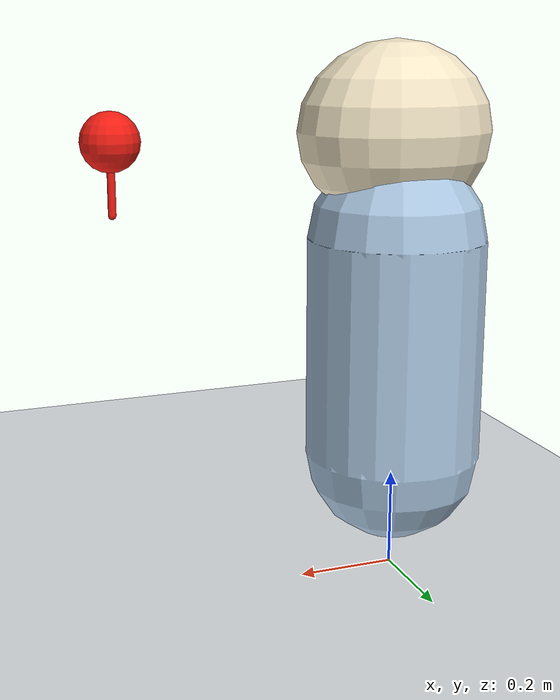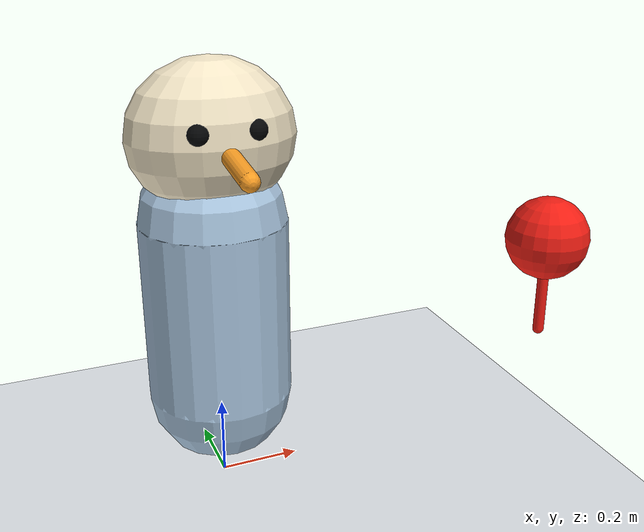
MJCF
<mujoco model="soulforge_m0_head">
  <compiler angle="radian" autolimits="true"/>
  <option timestep="0.005" gravity="0 0 -9.81"/>
  <visual>
    <global offwidth="1280" offheight="960"/>
    <headlight diffuse="0.7 0.7 0.7" ambient="0.25 0.25 0.25" specular="0.2 0.2 0.2"/>
    <rgba haze="0.92 0.95 1 1"/>
  </visual>
  <asset>
    <material name="mat_body" rgba="0.67 0.78 0.88 1"/>
    <material name="mat_head" rgba="0.95 0.90 0.78 1"/>
    <material name="mat_eye" rgba="0.02 0.025 0.03 1"/>
    <material name="mat_target" rgba="0.95 0.12 0.08 1"/>
    <material name="mat_floor" rgba="0.88 0.90 0.92 1"/>
  </asset>
  <worldbody>
    <light name="key" pos="0 -3 3" dir="0 1 -1" directional="true"/>
    <geom name="floor" type="plane" pos="0 0 0" size="2 2 0.02" material="mat_floor"/>
    <camera name="demo" pos="1.25 -2.2 1.25" xyaxes="1 0 0 0 0.45 0.89"/>

    <body name="torso" pos="0 0 0.45">
      <geom name="torso_geom" type="capsule" fromto="0 0 -0.2 0 0 0.25" size="0.18" material="mat_body"/>

      <body name="yaw_link" pos="0 0 0.28">
        <inertial pos="0 0 0" mass="0.01" diaginertia="0.00001 0.00001 0.00001"/>
        <joint name="head_yaw" type="hinge" axis="0 0 1" range="-0.70 0.70" damping="4.0" armature="0.02"/>

        <body name="pitch_link">
          <inertial pos="0 0 0" mass="0.01" diaginertia="0.00001 0.00001 0.00001"/>
          <joint name="head_pitch" type="hinge" axis="1 0 0" range="-0.45 0.45" damping="4.0" armature="0.02"/>

          <body name="roll_link">
            <inertial pos="0 0 0" mass="0.01" diaginertia="0.00001 0.00001 0.00001"/>
            <joint name="head_roll" type="hinge" axis="0 1 0" range="-0.30 0.30" damping="3.0" armature="0.02"/>

            <body name="head" pos="0 -0.02 0.18">
              <geom name="head_geom" type="ellipsoid" size="0.20 0.16 0.18" material="mat_head"/>
              <geom name="left_eye" type="sphere" pos="-0.065 -0.135 0.035" size="0.025" material="mat_eye"/>
              <geom name="right_eye" type="sphere" pos="0.065 -0.135 0.035" size="0.025" material="mat_eye"/>
              <geom name="beak" type="capsule" fromto="0 -0.15 -0.015 0 -0.28 -0.035" size="0.022" rgba="0.98 0.62 0.14 1"/>
            </body>
          </body>
        </body>
      </body>
    </body>

    <body name="reactive_target" pos="0.42 -0.72 0.84">
      <geom name="target_pole" type="capsule" fromto="0 0 -0.18 0 0 0.02" size="0.01" material="mat_target"/>
      <geom name="target_geom" type="sphere" size="0.075" material="mat_target"/>
    </body>
  </worldbody>
  <actuator>
    <position name="head_yaw_servo" joint="head_yaw" kp="12" ctrlrange="-0.70 0.70"/>
    <position name="head_pitch_servo" joint="head_pitch" kp="12" ctrlrange="-0.45 0.45"/>
    <position name="head_roll_servo" joint="head_roll" kp="8" ctrlrange="-0.30 0.30"/>
  </actuator>
</mujoco>
